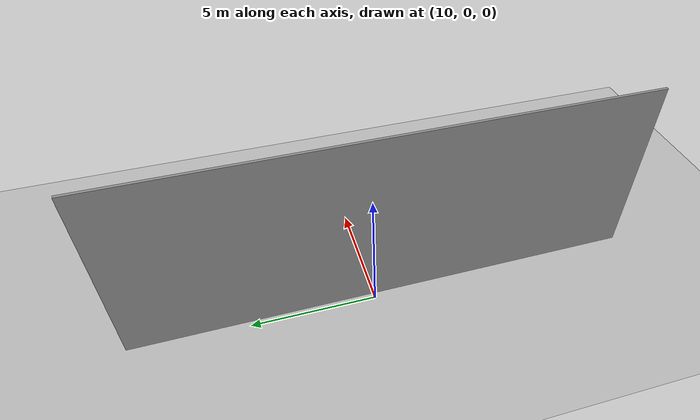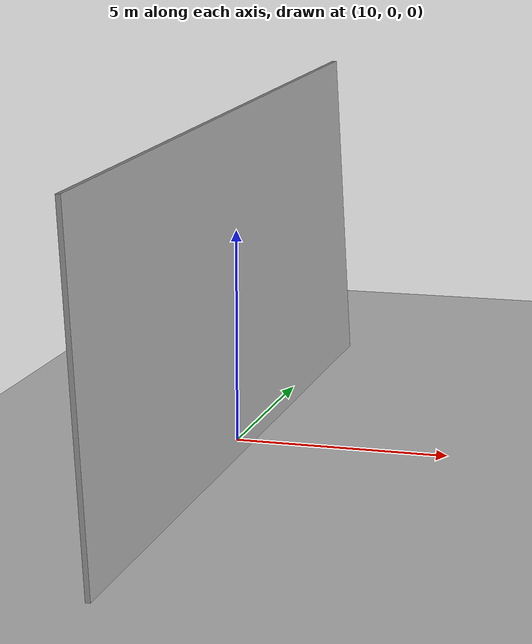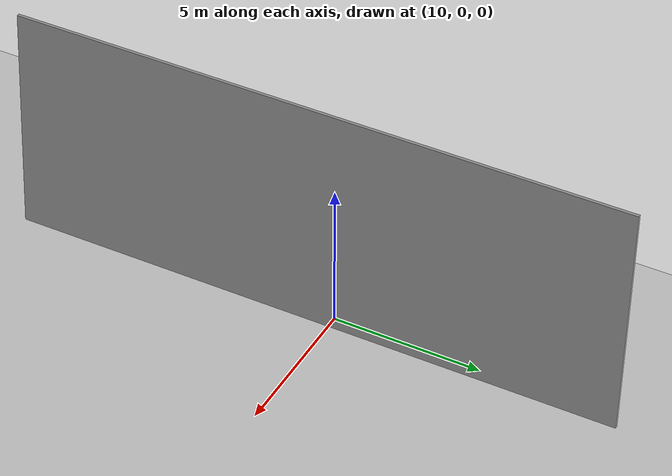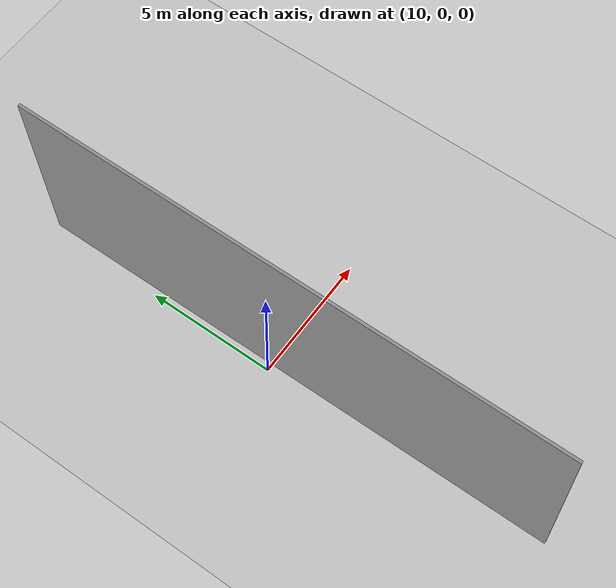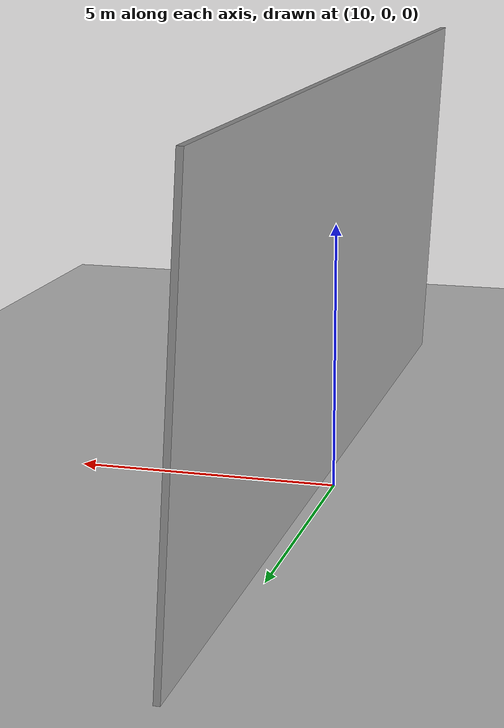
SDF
<sdf version="1.6">
 <world name="default">
  <model name="ground_plane">
   <static>1</static>
   <link name="link">
    <collision name="collision">
     <geometry><plane><normal>0 0 1</normal><size>100 100</size></plane></geometry>
     <surface>
      <contact><collide_bitmask>65535</collide_bitmask></contact>
      <friction><ode><mu>100</mu><mu2>50</mu2></ode></friction>
     </surface>
    </collision>
    <visual name="visual">
     <cast_shadows>0</cast_shadows>
     <geometry><plane><normal>0 0 1</normal><size>100 100</size></plane></geometry>
     <material>
      <script><uri>file://media/materials/scripts/gazebo.material</uri><name>Gazebo/Grey</name></script>
     </material>
    </visual>
   </link>
  </model>
  <model name="wall">
   <link name="link">
    <inertial>
     <mass>1</mass>
     <inertia>
      <ixx>0.166667</ixx>
      <ixy>0</ixy>
      <ixz>0</ixz>
      <iyy>0.166667</iyy>
      <iyz>0</iyz>
      <izz>0.166667</izz>
     </inertia>
    </inertial>
    <visual name="visual">
     <geometry><box><size>20.7437 0.108573 7.82367</size></box></geometry>
     <material>
      <script><name>Gazebo/Grey</name><uri>file://media/materials/scripts/gazebo.material</uri></script>
     </material>
    </visual>
    <collision name="collision">
     <geometry><box><size>20.7437 0.108573 7.82367</size></box></geometry>
     <surface>
      <friction>
       <ode><mu>1</mu><mu2>1</mu2><fdir1>0 0 0</fdir1><slip1>0</slip1><slip2>0</slip2></ode>
       <torsional>
        <coefficient>1</coefficient>
        <patch_radius>0</patch_radius>
        <surface_radius>0</surface_radius>
        <use_patch_radius>1</use_patch_radius>
        <ode><slip>0</slip></ode>
       </torsional>
      </friction>
      <bounce><restitution_coefficient>0</restitution_coefficient><threshold>1e+06</threshold></bounce>
      <contact>
       <collide_without_contact>0</collide_without_contact>
       <collide_without_contact_bitmask>1</collide_without_contact_bitmask>
       <collide_bitmask>1</collide_bitmask>
       <ode>
        <soft_cfm>0</soft_cfm>
        <soft_erp>0.2</soft_erp>
        <kp>1e+13</kp>
        <kd>1</kd>
        <max_vel>0.01</max_vel>
        <min_depth>0</min_depth>
       </ode>
       <bullet>
        <split_impulse>1</split_impulse>
        <split_impulse_penetration_threshold>-0.01</split_impulse_penetration_threshold>
        <soft_cfm>0</soft_cfm>
        <soft_erp>0.2</soft_erp>
        <kp>1e+13</kp>
        <kd>1</kd>
       </bullet>
      </contact>
     </surface>
    </collision>
   </link>
   <static>1</static>
   <pose>10.1207 -0.712157 3.85543 0.052697 0.001484 -1.56761</pose>
  </model>
 </world>
</sdf>
